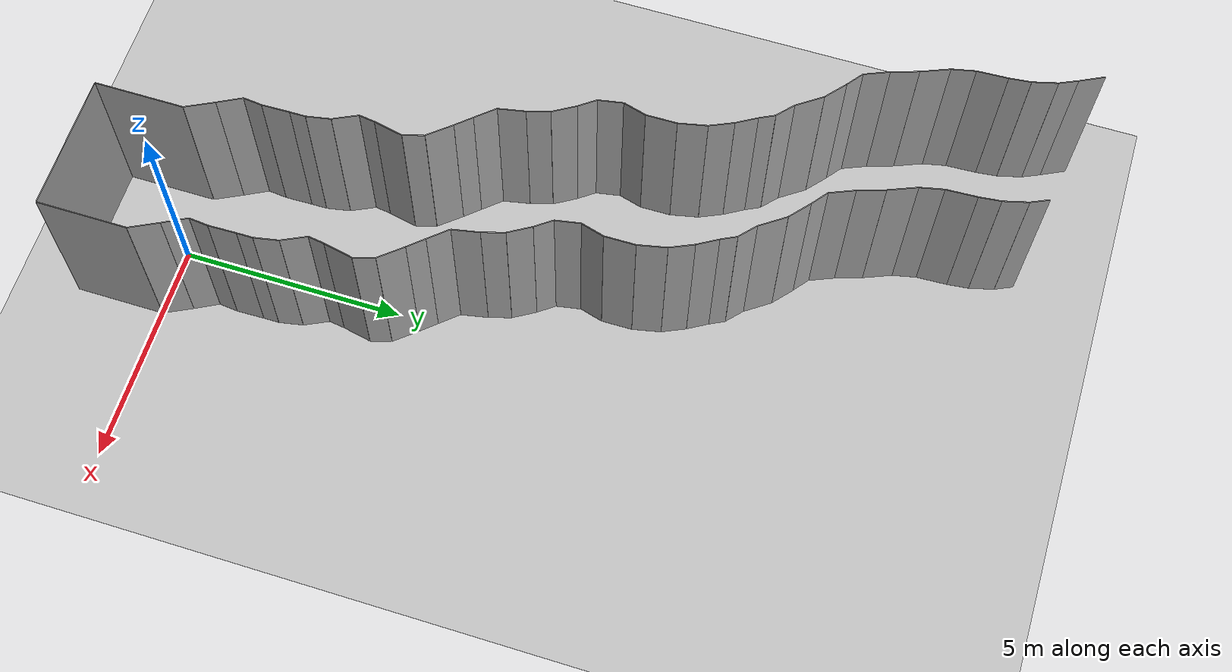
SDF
<sdf version="1.6">
 <world name="default">
  <model name="ground_plane">
   <static>1</static>
   <link name="link">
    <collision name="collision">
     <geometry><plane><normal>0 0 1</normal><size>200 200</size></plane></geometry>
     <surface><friction><ode><mu>100</mu><mu2>50</mu2></ode></friction></surface>
    </collision>
    <visual name="visual">
     <cast_shadows>0</cast_shadows>
     <geometry><plane><normal>0 0 1</normal><size>200 200</size></plane></geometry>
     <material>
      <script><uri>file://media/materials/scripts/gazebo.material</uri><name>Gazebo/Grey</name></script>
     </material>
    </visual>
   </link>
   <pose>0 100 0 0 -0 0</pose>
  </model>
  <model name="wall_back">
   <static>1</static>
   <pose>0.0 -2 2 0.0 0 0.0</pose>
   <link name="link">
    <collision name="collision"><geometry><box><size>3 0.02 4</size></box></geometry></collision>
    <visual name="visual">
     <material>
      <script><name>Gazebo/Grey</name><uri>file://media/materials/scripts/gazebo.material</uri></script>
     </material>
     <geometry><box><size>3 0.02 4</size></box></geometry>
    </visual>
   </link>
  </model>
  <model name="wall_left">
   <static>1</static>
   <pose>1.5 -1 2 0 0 0.00</pose>
   <link name="link">
    <collision name="collision"><geometry><box><size>0.02 2 4</size></box></geometry></collision>
    <visual name="visual">
     <material>
      <script><name>Gazebo/Grey</name><uri>file://media/materials/scripts/gazebo.material</uri></script>
     </material>
     <geometry><box><size>0.02 2 4</size></box></geometry>
    </visual>
   </link>
  </model>
  <model name="wall_right">
   <static>1</static>
   <pose>-1.5 -1 2 0 0 0.00</pose>
   <link name="link">
    <collision name="collision"><geometry><box><size>0.02 2 4</size></box></geometry></collision>
    <visual name="visual">
     <material>
      <script><name>Gazebo/Grey</name><uri>file://media/materials/scripts/gazebo.material</uri></script>
     </material>
     <geometry><box><size>0.02 2 4</size></box></geometry>
    </visual>
   </link>
  </model>
  <model name="wall_0">
   <static>1</static>
   <pose>-1.6543823810586844 0.30656647983834645 2 0 0 0.46651175535888567</pose>
   <link name="link">
    <collision name="collision"><geometry><box><size>0.02 0.686489406012 4</size></box></geometry></collision>
    <visual name="visual">
     <material>
      <script><name>Gazebo/Grey</name><uri>file://media/materials/scripts/gazebo.material</uri></script>
     </material>
     <geometry><box><size>0.02 0.686489406012 4</size></box></geometry>
    </visual>
   </link>
  </model>
  <model name="wall_1">
   <static>1</static>
   <pose>1.3456176189413156 0.30656647983834645 2 0 0 0.46651175535888567</pose>
   <link name="link">
    <collision name="collision"><geometry><box><size>0.02 0.686489406012 4</size></box></geometry></collision>
    <visual name="visual">
     <material>
      <script><name>Gazebo/Grey</name><uri>file://media/materials/scripts/gazebo.material</uri></script>
     </material>
     <geometry><box><size>0.02 0.686489406012 4</size></box></geometry>
    </visual>
   </link>
  </model>
  <model name="wall_2">
   <static>1</static>
   <pose>-1.9452144958780733 0.8722627589688359 2 0 0 0.48467623624901895</pose>
   <link name="link">
    <collision name="collision"><geometry><box><size>0.02 0.585719327749 4</size></box></geometry></collision>
    <visual name="visual">
     <material>
      <script><name>Gazebo/Grey</name><uri>file://media/materials/scripts/gazebo.material</uri></script>
     </material>
     <geometry><box><size>0.02 0.585719327749 4</size></box></geometry>
    </visual>
   </link>
  </model>
  <model name="wall_3">
   <static>1</static>
   <pose>1.0547855041219267 0.8722627589688359 2 0 0 0.48467623624901895</pose>
   <link name="link">
    <collision name="collision"><geometry><box><size>0.02 0.585719327749 4</size></box></geometry></collision>
    <visual name="visual">
     <material>
      <script><name>Gazebo/Grey</name><uri>file://media/materials/scripts/gazebo.material</uri></script>
     </material>
     <geometry><box><size>0.02 0.585719327749 4</size></box></geometry>
    </visual>
   </link>
  </model>
  <model name="wall_4">
   <static>1</static>
   <pose>-2.059857094756395 1.3435047060668295 2 0 0 -0.10244951304842882</pose>
   <link name="link">
    <collision name="collision"><geometry><box><size>0.02 0.426460382116 4</size></box></geometry></collision>
    <visual name="visual">
     <material>
      <script><name>Gazebo/Grey</name><uri>file://media/materials/scripts/gazebo.material</uri></script>
     </material>
     <geometry><box><size>0.02 0.426460382116 4</size></box></geometry>
    </visual>
   </link>
  </model>
  <model name="wall_5">
   <static>1</static>
   <pose>0.9401429052436052 1.3435047060668295 2 0 0 -0.10244951304842882</pose>
   <link name="link">
    <collision name="collision"><geometry><box><size>0.02 0.426460382116 4</size></box></geometry></collision>
    <visual name="visual">
     <material>
      <script><name>Gazebo/Grey</name><uri>file://media/materials/scripts/gazebo.material</uri></script>
     </material>
     <geometry><box><size>0.02 0.426460382116 4</size></box></geometry>
    </visual>
   </link>
  </model>
  <model name="wall_6">
   <static>1</static>
   <pose>-2.0437863155778673 1.8674679967461443 2 0 0 0.01839245737626638</pose>
   <link name="link">
    <collision name="collision"><geometry><box><size>0.02 0.623807794399 4</size></box></geometry></collision>
    <visual name="visual">
     <material>
      <script><name>Gazebo/Grey</name><uri>file://media/materials/scripts/gazebo.material</uri></script>
     </material>
     <geometry><box><size>0.02 0.623807794399 4</size></box></geometry>
    </visual>
   </link>
  </model>
  <model name="wall_7">
   <static>1</static>
   <pose>0.9562136844221327 1.8674679967461443 2 0 0 0.01839245737626638</pose>
   <link name="link">
    <collision name="collision"><geometry><box><size>0.02 0.623807794399 4</size></box></geometry></collision>
    <visual name="visual">
     <material>
      <script><name>Gazebo/Grey</name><uri>file://media/materials/scripts/gazebo.material</uri></script>
     </material>
     <geometry><box><size>0.02 0.623807794399 4</size></box></geometry>
    </visual>
   </link>
  </model>
  <model name="wall_8">
   <static>1</static>
   <pose>-2.050072337990936 2.3553519176681665 2 0 0 0.0031225146184185324</pose>
   <link name="link">
    <collision name="collision"><geometry><box><size>0.02 0.352067272441 4</size></box></geometry></collision>
    <visual name="visual">
     <material>
      <script><name>Gazebo/Grey</name><uri>file://media/materials/scripts/gazebo.material</uri></script>
     </material>
     <geometry><box><size>0.02 0.352067272441 4</size></box></geometry>
    </visual>
   </link>
  </model>
  <model name="wall_9">
   <static>1</static>
   <pose>0.9499276620090642 2.3553519176681665 2 0 0 0.0031225146184185324</pose>
   <link name="link">
    <collision name="collision"><geometry><box><size>0.02 0.352067272441 4</size></box></geometry></collision>
    <visual name="visual">
     <material>
      <script><name>Gazebo/Grey</name><uri>file://media/materials/scripts/gazebo.material</uri></script>
     </material>
     <geometry><box><size>0.02 0.352067272441 4</size></box></geometry>
    </visual>
   </link>
  </model>
  <model name="wall_10">
   <static>1</static>
   <pose>-2.1010790889533584 2.7994131217400637 2 0 0 0.1860750211381766</pose>
   <link name="link">
    <collision name="collision"><geometry><box><size>0.02 0.545472838949 4</size></box></geometry></collision>
    <visual name="visual">
     <material>
      <script><name>Gazebo/Grey</name><uri>file://media/materials/scripts/gazebo.material</uri></script>
     </material>
     <geometry><box><size>0.02 0.545472838949 4</size></box></geometry>
    </visual>
   </link>
  </model>
  <model name="wall_11">
   <static>1</static>
   <pose>0.8989209110466416 2.7994131217400637 2 0 0 0.1860750211381766</pose>
   <link name="link">
    <collision name="collision"><geometry><box><size>0.02 0.545472838949 4</size></box></geometry></collision>
    <visual name="visual">
     <material>
      <script><name>Gazebo/Grey</name><uri>file://media/materials/scripts/gazebo.material</uri></script>
     </material>
     <geometry><box><size>0.02 0.545472838949 4</size></box></geometry>
    </visual>
   </link>
  </model>
  <model name="wall_12">
   <static>1</static>
   <pose>-2.279869380166036 3.3324791798309112 2 0 0 0.4509339707663869</pose>
   <link name="link">
    <collision name="collision"><geometry><box><size>0.02 0.588946036307 4</size></box></geometry></collision>
    <visual name="visual">
     <material>
      <script><name>Gazebo/Grey</name><uri>file://media/materials/scripts/gazebo.material</uri></script>
     </material>
     <geometry><box><size>0.02 0.588946036307 4</size></box></geometry>
    </visual>
   </link>
  </model>
  <model name="wall_13">
   <static>1</static>
   <pose>0.7201306198339639 3.3324791798309112 2 0 0 0.4509339707663869</pose>
   <link name="link">
    <collision name="collision"><geometry><box><size>0.02 0.588946036307 4</size></box></geometry></collision>
    <visual name="visual">
     <material>
      <script><name>Gazebo/Grey</name><uri>file://media/materials/scripts/gazebo.material</uri></script>
     </material>
     <geometry><box><size>0.02 0.588946036307 4</size></box></geometry>
    </visual>
   </link>
  </model>
  <model name="wall_14">
   <static>1</static>
   <pose>-2.383348714980828 3.7754929051992154 2 0 0 -0.1387499565541778</pose>
   <link name="link">
    <collision name="collision"><geometry><box><size>0.02 0.359406203325 4</size></box></geometry></collision>
    <visual name="visual">
     <material>
      <script><name>Gazebo/Grey</name><uri>file://media/materials/scripts/gazebo.material</uri></script>
     </material>
     <geometry><box><size>0.02 0.359406203325 4</size></box></geometry>
    </visual>
   </link>
  </model>
  <model name="wall_15">
   <static>1</static>
   <pose>0.6166512850191719 3.7754929051992154 2 0 0 -0.1387499565541778</pose>
   <link name="link">
    <collision name="collision"><geometry><box><size>0.02 0.359406203325 4</size></box></geometry></collision>
    <visual name="visual">
     <material>
      <script><name>Gazebo/Grey</name><uri>file://media/materials/scripts/gazebo.material</uri></script>
     </material>
     <geometry><box><size>0.02 0.359406203325 4</size></box></geometry>
    </visual>
   </link>
  </model>
  <model name="wall_16">
   <static>1</static>
   <pose>-2.290016331919445 4.279901721092762 2 0 0 -0.20677987608019407</pose>
   <link name="link">
    <collision name="collision"><geometry><box><size>0.02 0.66707609412 4</size></box></geometry></collision>
    <visual name="visual">
     <material>
      <script><name>Gazebo/Grey</name><uri>file://media/materials/scripts/gazebo.material</uri></script>
     </material>
     <geometry><box><size>0.02 0.66707609412 4</size></box></geometry>
    </visual>
   </link>
  </model>
  <model name="wall_17">
   <static>1</static>
   <pose>0.7099836680805551 4.279901721092762 2 0 0 -0.20677987608019407</pose>
   <link name="link">
    <collision name="collision"><geometry><box><size>0.02 0.66707609412 4</size></box></geometry></collision>
    <visual name="visual">
     <material>
      <script><name>Gazebo/Grey</name><uri>file://media/materials/scripts/gazebo.material</uri></script>
     </material>
     <geometry><box><size>0.02 0.66707609412 4</size></box></geometry>
    </visual>
   </link>
  </model>
  <model name="wall_18">
   <static>1</static>
   <pose>-2.2898368334641326 4.836894867763636 2 0 0 0.2879948910821208</pose>
   <link name="link">
    <collision name="collision"><geometry><box><size>0.02 0.480927704564 4</size></box></geometry></collision>
    <visual name="visual">
     <material>
      <script><name>Gazebo/Grey</name><uri>file://media/materials/scripts/gazebo.material</uri></script>
     </material>
     <geometry><box><size>0.02 0.480927704564 4</size></box></geometry>
    </visual>
   </link>
  </model>
  <model name="wall_19">
   <static>1</static>
   <pose>0.7101631665358674 4.836894867763636 2 0 0 0.2879948910821208</pose>
   <link name="link">
    <collision name="collision"><geometry><box><size>0.02 0.480927704564 4</size></box></geometry></collision>
    <visual name="visual">
     <material>
      <script><name>Gazebo/Grey</name><uri>file://media/materials/scripts/gazebo.material</uri></script>
     </material>
     <geometry><box><size>0.02 0.480927704564 4</size></box></geometry>
    </visual>
   </link>
  </model>
  <model name="wall_20">
   <static>1</static>
   <pose>-2.564620765072096 5.312654884640017 2 0 0 0.6998953788413514</pose>
   <link name="link">
    <collision name="collision"><geometry><box><size>0.02 0.641120463387 4</size></box></geometry></collision>
    <visual name="visual">
     <material>
      <script><name>Gazebo/Grey</name><uri>file://media/materials/scripts/gazebo.material</uri></script>
     </material>
     <geometry><box><size>0.02 0.641120463387 4</size></box></geometry>
    </visual>
   </link>
  </model>
  <model name="wall_21">
   <static>1</static>
   <pose>0.435379234927904 5.312654884640017 2 0 0 0.6998953788413514</pose>
   <link name="link">
    <collision name="collision"><geometry><box><size>0.02 0.641120463387 4</size></box></geometry></collision>
    <visual name="visual">
     <material>
      <script><name>Gazebo/Grey</name><uri>file://media/materials/scripts/gazebo.material</uri></script>
     </material>
     <geometry><box><size>0.02 0.641120463387 4</size></box></geometry>
    </visual>
   </link>
  </model>
  <model name="wall_22">
   <static>1</static>
   <pose>-2.919191703955924 5.72342609266741 2 0 0 0.7297084128582174</pose>
   <link name="link">
    <collision name="collision"><geometry><box><size>0.02 0.444267617596 4</size></box></geometry></collision>
    <visual name="visual">
     <material>
      <script><name>Gazebo/Grey</name><uri>file://media/materials/scripts/gazebo.material</uri></script>
     </material>
     <geometry><box><size>0.02 0.444267617596 4</size></box></geometry>
    </visual>
   </link>
  </model>
  <model name="wall_23">
   <static>1</static>
   <pose>0.08080829604407613 5.72342609266741 2 0 0 0.7297084128582174</pose>
   <link name="link">
    <collision name="collision"><geometry><box><size>0.02 0.444267617596 4</size></box></geometry></collision>
    <visual name="visual">
     <material>
      <script><name>Gazebo/Grey</name><uri>file://media/materials/scripts/gazebo.material</uri></script>
     </material>
     <geometry><box><size>0.02 0.444267617596 4</size></box></geometry>
    </visual>
   </link>
  </model>
  <model name="wall_24">
   <static>1</static>
   <pose>-3.2457934064803684 6.09286042455447 2 0 0 0.7192071707024089</pose>
   <link name="link">
    <collision name="collision"><geometry><box><size>0.02 0.541951496886 4</size></box></geometry></collision>
    <visual name="visual">
     <material>
      <script><name>Gazebo/Grey</name><uri>file://media/materials/scripts/gazebo.material</uri></script>
     </material>
     <geometry><box><size>0.02 0.541951496886 4</size></box></geometry>
    </visual>
   </link>
  </model>
  <model name="wall_25">
   <static>1</static>
   <pose>-0.2457934064803684 6.09286042455447 2 0 0 0.7192071707024089</pose>
   <link name="link">
    <collision name="collision"><geometry><box><size>0.02 0.541951496886 4</size></box></geometry></collision>
    <visual name="visual">
     <material>
      <script><name>Gazebo/Grey</name><uri>file://media/materials/scripts/gazebo.material</uri></script>
     </material>
     <geometry><box><size>0.02 0.541951496886 4</size></box></geometry>
    </visual>
   </link>
  </model>
  <model name="wall_26">
   <static>1</static>
   <pose>-3.482805525628354 6.596380888041652 2 0 0 0.19278637269477422</pose>
   <link name="link">
    <collision name="collision"><geometry><box><size>0.02 0.610627868023 4</size></box></geometry></collision>
    <visual name="visual">
     <material>
      <script><name>Gazebo/Grey</name><uri>file://media/materials/scripts/gazebo.material</uri></script>
     </material>
     <geometry><box><size>0.02 0.610627868023 4</size></box></geometry>
    </visual>
   </link>
  </model>
  <model name="wall_27">
   <static>1</static>
   <pose>-0.4828055256283541 6.596380888041652 2 0 0 0.19278637269477422</pose>
   <link name="link">
    <collision name="collision"><geometry><box><size>0.02 0.610627868023 4</size></box></geometry></collision>
    <visual name="visual">
     <material>
      <script><name>Gazebo/Grey</name><uri>file://media/materials/scripts/gazebo.material</uri></script>
     </material>
     <geometry><box><size>0.02 0.610627868023 4</size></box></geometry>
    </visual>
   </link>
  </model>
  <model name="wall_28">
   <static>1</static>
   <pose>-3.6148097615556565 7.144617172428788 2 0 0 0.28751875089007684</pose>
   <link name="link">
    <collision name="collision"><geometry><box><size>0.02 0.518438756003 4</size></box></geometry></collision>
    <visual name="visual">
     <material>
      <script><name>Gazebo/Grey</name><uri>file://media/materials/scripts/gazebo.material</uri></script>
     </material>
     <geometry><box><size>0.02 0.518438756003 4</size></box></geometry>
    </visual>
   </link>
  </model>
  <model name="wall_29">
   <static>1</static>
   <pose>-0.6148097615556565 7.144617172428788 2 0 0 0.28751875089007684</pose>
   <link name="link">
    <collision name="collision"><geometry><box><size>0.02 0.518438756003 4</size></box></geometry></collision>
    <visual name="visual">
     <material>
      <script><name>Gazebo/Grey</name><uri>file://media/materials/scripts/gazebo.material</uri></script>
     </material>
     <geometry><box><size>0.02 0.518438756003 4</size></box></geometry>
    </visual>
   </link>
  </model>
  <model name="wall_30">
   <static>1</static>
   <pose>-3.8345046086885612 7.635181016317983 2 0 0 0.5434400285841595</pose>
   <link name="link">
    <collision name="collision"><geometry><box><size>0.02 0.565429186924 4</size></box></geometry></collision>
    <visual name="visual">
     <material>
      <script><name>Gazebo/Grey</name><uri>file://media/materials/scripts/gazebo.material</uri></script>
     </material>
     <geometry><box><size>0.02 0.565429186924 4</size></box></geometry>
    </visual>
   </link>
  </model>
  <model name="wall_31">
   <static>1</static>
   <pose>-0.8345046086885612 7.635181016317983 2 0 0 0.5434400285841595</pose>
   <link name="link">
    <collision name="collision"><geometry><box><size>0.02 0.565429186924 4</size></box></geometry></collision>
    <visual name="visual">
     <material>
      <script><name>Gazebo/Grey</name><uri>file://media/materials/scripts/gazebo.material</uri></script>
     </material>
     <geometry><box><size>0.02 0.565429186924 4</size></box></geometry>
    </visual>
   </link>
  </model>
  <model name="wall_32">
   <static>1</static>
   <pose>-4.115288077113676 8.057760478986667 2 0 0 0.6404848788463845</pose>
   <link name="link">
    <collision name="collision"><geometry><box><size>0.02 0.450468404269 4</size></box></geometry></collision>
    <visual name="visual">
     <material>
      <script><name>Gazebo/Grey</name><uri>file://media/materials/scripts/gazebo.material</uri></script>
     </material>
     <geometry><box><size>0.02 0.450468404269 4</size></box></geometry>
    </visual>
   </link>
  </model>
  <model name="wall_33">
   <static>1</static>
   <pose>-1.115288077113676 8.057760478986667 2 0 0 0.6404848788463845</pose>
   <link name="link">
    <collision name="collision"><geometry><box><size>0.02 0.450468404269 4</size></box></geometry></collision>
    <visual name="visual">
     <material>
      <script><name>Gazebo/Grey</name><uri>file://media/materials/scripts/gazebo.material</uri></script>
     </material>
     <geometry><box><size>0.02 0.450468404269 4</size></box></geometry>
    </visual>
   </link>
  </model>
  <model name="wall_34">
   <static>1</static>
   <pose>-4.299435172877977 8.51320136878723 2 0 0 0.17836873913840587</pose>
   <link name="link">
    <collision name="collision"><geometry><box><size>0.02 0.558555265946 4</size></box></geometry></collision>
    <visual name="visual">
     <material>
      <script><name>Gazebo/Grey</name><uri>file://media/materials/scripts/gazebo.material</uri></script>
     </material>
     <geometry><box><size>0.02 0.558555265946 4</size></box></geometry>
    </visual>
   </link>
  </model>
  <model name="wall_35">
   <static>1</static>
   <pose>-1.2994351728779767 8.51320136878723 2 0 0 0.17836873913840587</pose>
   <link name="link">
    <collision name="collision"><geometry><box><size>0.02 0.558555265946 4</size></box></geometry></collision>
    <visual name="visual">
     <material>
      <script><name>Gazebo/Grey</name><uri>file://media/materials/scripts/gazebo.material</uri></script>
     </material>
     <geometry><box><size>0.02 0.558555265946 4</size></box></geometry>
    </visual>
   </link>
  </model>
  <model name="wall_36">
   <static>1</static>
   <pose>-4.2760185301588285 9.04758153323963 2 0 0 -0.27407297041161416</pose>
   <link name="link">
    <collision name="collision"><geometry><box><size>0.02 0.539191362106 4</size></box></geometry></collision>
    <visual name="visual">
     <material>
      <script><name>Gazebo/Grey</name><uri>file://media/materials/scripts/gazebo.material</uri></script>
     </material>
     <geometry><box><size>0.02 0.539191362106 4</size></box></geometry>
    </visual>
   </link>
  </model>
  <model name="wall_37">
   <static>1</static>
   <pose>-1.2760185301588285 9.04758153323963 2 0 0 -0.27407297041161416</pose>
   <link name="link">
    <collision name="collision"><geometry><box><size>0.02 0.539191362106 4</size></box></geometry></collision>
    <visual name="visual">
     <material>
      <script><name>Gazebo/Grey</name><uri>file://media/materials/scripts/gazebo.material</uri></script>
     </material>
     <geometry><box><size>0.02 0.539191362106 4</size></box></geometry>
    </visual>
   </link>
  </model>
  <model name="wall_38">
   <static>1</static>
   <pose>-4.20504366651556 9.652917953593123 2 0 0 0.005761754508568655</pose>
   <link name="link">
    <collision name="collision"><geometry><box><size>0.02 0.691617458791 4</size></box></geometry></collision>
    <visual name="visual">
     <material>
      <script><name>Gazebo/Grey</name><uri>file://media/materials/scripts/gazebo.material</uri></script>
     </material>
     <geometry><box><size>0.02 0.691617458791 4</size></box></geometry>
    </visual>
   </link>
  </model>
  <model name="wall_39">
   <static>1</static>
   <pose>-1.20504366651556 9.652917953593123 2 0 0 0.005761754508568655</pose>
   <link name="link">
    <collision name="collision"><geometry><box><size>0.02 0.691617458791 4</size></box></geometry></collision>
    <visual name="visual">
     <material>
      <script><name>Gazebo/Grey</name><uri>file://media/materials/scripts/gazebo.material</uri></script>
     </material>
     <geometry><box><size>0.02 0.691617458791 4</size></box></geometry>
    </visual>
   </link>
  </model>
  <model name="wall_40">
   <static>1</static>
   <pose>-4.274500966864753 10.314746966604584 2 0 0 0.21032168698291834</pose>
   <link name="link">
    <collision name="collision"><geometry><box><size>0.02 0.646293905643 4</size></box></geometry></collision>
    <visual name="visual">
     <material>
      <script><name>Gazebo/Grey</name><uri>file://media/materials/scripts/gazebo.material</uri></script>
     </material>
     <geometry><box><size>0.02 0.646293905643 4</size></box></geometry>
    </visual>
   </link>
  </model>
  <model name="wall_41">
   <static>1</static>
   <pose>-1.2745009668647533 10.314746966604584 2 0 0 0.21032168698291834</pose>
   <link name="link">
    <collision name="collision"><geometry><box><size>0.02 0.646293905643 4</size></box></geometry></collision>
    <visual name="visual">
     <material>
      <script><name>Gazebo/Grey</name><uri>file://media/materials/scripts/gazebo.material</uri></script>
     </material>
     <geometry><box><size>0.02 0.646293905643 4</size></box></geometry>
    </visual>
   </link>
  </model>
  <model name="wall_42">
   <static>1</static>
   <pose>-4.457773014037533 10.886065462250867 2 0 0 0.42586488387103183</pose>
   <link name="link">
    <collision name="collision"><geometry><box><size>0.02 0.560662301275 4</size></box></geometry></collision>
    <visual name="visual">
     <material>
      <script><name>Gazebo/Grey</name><uri>file://media/materials/scripts/gazebo.material</uri></script>
     </material>
     <geometry><box><size>0.02 0.560662301275 4</size></box></geometry>
    </visual>
   </link>
  </model>
  <model name="wall_43">
   <static>1</static>
   <pose>-1.4577730140375333 10.886065462250867 2 0 0 0.42586488387103183</pose>
   <link name="link">
    <collision name="collision"><geometry><box><size>0.02 0.560662301275 4</size></box></geometry></collision>
    <visual name="visual">
     <material>
      <script><name>Gazebo/Grey</name><uri>file://media/materials/scripts/gazebo.material</uri></script>
     </material>
     <geometry><box><size>0.02 0.560662301275 4</size></box></geometry>
    </visual>
   </link>
  </model>
  <model name="wall_44">
   <static>1</static>
   <pose>-4.703960582407086 11.35962647889364 2 0 0 0.5384607656495747</pose>
   <link name="link">
    <collision name="collision"><geometry><box><size>0.02 0.508488732725 4</size></box></geometry></collision>
    <visual name="visual">
     <material>
      <script><name>Gazebo/Grey</name><uri>file://media/materials/scripts/gazebo.material</uri></script>
     </material>
     <geometry><box><size>0.02 0.508488732725 4</size></box></geometry>
    </visual>
   </link>
  </model>
  <model name="wall_45">
   <static>1</static>
   <pose>-1.7039605824070856 11.35962647889364 2 0 0 0.5384607656495747</pose>
   <link name="link">
    <collision name="collision"><geometry><box><size>0.02 0.508488732725 4</size></box></geometry></collision>
    <visual name="visual">
     <material>
      <script><name>Gazebo/Grey</name><uri>file://media/materials/scripts/gazebo.material</uri></script>
     </material>
     <geometry><box><size>0.02 0.508488732725 4</size></box></geometry>
    </visual>
   </link>
  </model>
  <model name="wall_46">
   <static>1</static>
   <pose>-4.918099443545411 11.743242715882806 2 0 0 0.46888166544557536</pose>
   <link name="link">
    <collision name="collision"><geometry><box><size>0.02 0.370703895905 4</size></box></geometry></collision>
    <visual name="visual">
     <material>
      <script><name>Gazebo/Grey</name><uri>file://media/materials/scripts/gazebo.material</uri></script>
     </material>
     <geometry><box><size>0.02 0.370703895905 4</size></box></geometry>
    </visual>
   </link>
  </model>
  <model name="wall_47">
   <static>1</static>
   <pose>-1.9180994435454108 11.743242715882806 2 0 0 0.46888166544557536</pose>
   <link name="link">
    <collision name="collision"><geometry><box><size>0.02 0.370703895905 4</size></box></geometry></collision>
    <visual name="visual">
     <material>
      <script><name>Gazebo/Grey</name><uri>file://media/materials/scripts/gazebo.material</uri></script>
     </material>
     <geometry><box><size>0.02 0.370703895905 4</size></box></geometry>
    </visual>
   </link>
  </model>
  <model name="wall_48">
   <static>1</static>
   <pose>-5.179390324439873 12.066083320564976 2 0 0 0.8451417917808436</pose>
   <link name="link">
    <collision name="collision"><geometry><box><size>0.02 0.47464414453 4</size></box></geometry></collision>
    <visual name="visual">
     <material>
      <script><name>Gazebo/Grey</name><uri>file://media/materials/scripts/gazebo.material</uri></script>
     </material>
     <geometry><box><size>0.02 0.47464414453 4</size></box></geometry>
    </visual>
   </link>
  </model>
  <model name="wall_49">
   <static>1</static>
   <pose>-2.179390324439873 12.066083320564976 2 0 0 0.8451417917808436</pose>
   <link name="link">
    <collision name="collision"><geometry><box><size>0.02 0.47464414453 4</size></box></geometry></collision>
    <visual name="visual">
     <material>
      <script><name>Gazebo/Grey</name><uri>file://media/materials/scripts/gazebo.material</uri></script>
     </material>
     <geometry><box><size>0.02 0.47464414453 4</size></box></geometry>
    </visual>
   </link>
  </model>
  <model name="wall_50">
   <static>1</static>
   <pose>-5.551896465735448 12.496326528862921 2 0 0 0.6206186792407631</pose>
   <link name="link">
    <collision name="collision"><geometry><box><size>0.02 0.670544521075 4</size></box></geometry></collision>
    <visual name="visual">
     <material>
      <script><name>Gazebo/Grey</name><uri>file://media/materials/scripts/gazebo.material</uri></script>
     </material>
     <geometry><box><size>0.02 0.670544521075 4</size></box></geometry>
    </visual>
   </link>
  </model>
  <model name="wall_51">
   <static>1</static>
   <pose>-2.5518964657354477 12.496326528862921 2 0 0 0.6206186792407631</pose>
   <link name="link">
    <collision name="collision"><geometry><box><size>0.02 0.670544521075 4</size></box></geometry></collision>
    <visual name="visual">
     <material>
      <script><name>Gazebo/Grey</name><uri>file://media/materials/scripts/gazebo.material</uri></script>
     </material>
     <geometry><box><size>0.02 0.670544521075 4</size></box></geometry>
    </visual>
   </link>
  </model>
  <model name="wall_52">
   <static>1</static>
   <pose>-5.964303892062197 12.953702459686623 2 0 0 0.8668177658218559</pose>
   <link name="link">
    <collision name="collision"><geometry><box><size>0.02 0.570487605197 4</size></box></geometry></collision>
    <visual name="visual">
     <material>
      <script><name>Gazebo/Grey</name><uri>file://media/materials/scripts/gazebo.material</uri></script>
     </material>
     <geometry><box><size>0.02 0.570487605197 4</size></box></geometry>
    </visual>
   </link>
  </model>
  <model name="wall_53">
   <static>1</static>
   <pose>-2.9643038920621967 12.953702459686623 2 0 0 0.8668177658218559</pose>
   <link name="link">
    <collision name="collision"><geometry><box><size>0.02 0.570487605197 4</size></box></geometry></collision>
    <visual name="visual">
     <material>
      <script><name>Gazebo/Grey</name><uri>file://media/materials/scripts/gazebo.material</uri></script>
     </material>
     <geometry><box><size>0.02 0.570487605197 4</size></box></geometry>
    </visual>
   </link>
  </model>
  <model name="wall_54">
   <static>1</static>
   <pose>-6.357036600522708 13.272945342648471 2 0 0 0.9159189311959149</pose>
   <link name="link">
    <collision name="collision"><geometry><box><size>0.02 0.442047760074 4</size></box></geometry></collision>
    <visual name="visual">
     <material>
      <script><name>Gazebo/Grey</name><uri>file://media/materials/scripts/gazebo.material</uri></script>
     </material>
     <geometry><box><size>0.02 0.442047760074 4</size></box></geometry>
    </visual>
   </link>
  </model>
  <model name="wall_55">
   <static>1</static>
   <pose>-3.357036600522708 13.272945342648471 2 0 0 0.9159189311959149</pose>
   <link name="link">
    <collision name="collision"><geometry><box><size>0.02 0.442047760074 4</size></box></geometry></collision>
    <visual name="visual">
     <material>
      <script><name>Gazebo/Grey</name><uri>file://media/materials/scripts/gazebo.material</uri></script>
     </material>
     <geometry><box><size>0.02 0.442047760074 4</size></box></geometry>
    </visual>
   </link>
  </model>
  <model name="wall_56">
   <static>1</static>
   <pose>-6.646114318915432 13.67549192420865 2 0 0 0.4015820331990404</pose>
   <link name="link">
    <collision name="collision"><geometry><box><size>0.02 0.582174256631 4</size></box></geometry></collision>
    <visual name="visual">
     <material>
      <script><name>Gazebo/Grey</name><uri>file://media/materials/scripts/gazebo.material</uri></script>
     </material>
     <geometry><box><size>0.02 0.582174256631 4</size></box></geometry>
    </visual>
   </link>
  </model>
  <model name="wall_57">
   <static>1</static>
   <pose>-3.6461143189154317 13.67549192420865 2 0 0 0.4015820331990404</pose>
   <link name="link">
    <collision name="collision"><geometry><box><size>0.02 0.582174256631 4</size></box></geometry></collision>
    <visual name="visual">
     <material>
      <script><name>Gazebo/Grey</name><uri>file://media/materials/scripts/gazebo.material</uri></script>
     </material>
     <geometry><box><size>0.02 0.582174256631 4</size></box></geometry>
    </visual>
   </link>
  </model>
  <model name="wall_58">
   <static>1</static>
   <pose>-6.857996356947405 14.241056013758298 2 0 0 0.3183957100025487</pose>
   <link name="link">
    <collision name="collision"><geometry><box><size>0.02 0.626771781245 4</size></box></geometry></collision>
    <visual name="visual">
     <material>
      <script><name>Gazebo/Grey</name><uri>file://media/materials/scripts/gazebo.material</uri></script>
     </material>
     <geometry><box><size>0.02 0.626771781245 4</size></box></geometry>
    </visual>
   </link>
  </model>
  <model name="wall_59">
   <static>1</static>
   <pose>-3.857996356947405 14.241056013758298 2 0 0 0.3183957100025487</pose>
   <link name="link">
    <collision name="collision"><geometry><box><size>0.02 0.626771781245 4</size></box></geometry></collision>
    <visual name="visual">
     <material>
      <script><name>Gazebo/Grey</name><uri>file://media/materials/scripts/gazebo.material</uri></script>
     </material>
     <geometry><box><size>0.02 0.626771781245 4</size></box></geometry>
    </visual>
   </link>
  </model>
  <model name="wall_60">
   <static>1</static>
   <pose>-7.0833512909204295 14.845704658360427 2 0 0 0.39292776241886906</pose>
   <link name="link">
    <collision name="collision"><geometry><box><size>0.02 0.664681854426 4</size></box></geometry></collision>
    <visual name="visual">
     <material>
      <script><name>Gazebo/Grey</name><uri>file://media/materials/scripts/gazebo.material</uri></script>
     </material>
     <geometry><box><size>0.02 0.664681854426 4</size></box></geometry>
    </visual>
   </link>
  </model>
  <model name="wall_61">
   <static>1</static>
   <pose>-4.0833512909204295 14.845704658360427 2 0 0 0.39292776241886906</pose>
   <link name="link">
    <collision name="collision"><geometry><box><size>0.02 0.664681854426 4</size></box></geometry></collision>
    <visual name="visual">
     <material>
      <script><name>Gazebo/Grey</name><uri>file://media/materials/scripts/gazebo.material</uri></script>
     </material>
     <geometry><box><size>0.02 0.664681854426 4</size></box></geometry>
    </visual>
   </link>
  </model>
  <model name="wall_62">
   <static>1</static>
   <pose>-7.268294154239975 15.416405111375003 2 0 0 0.2153933452892111</pose>
   <link name="link">
    <collision name="collision"><geometry><box><size>0.02 0.539847714358 4</size></box></geometry></collision>
    <visual name="visual">
     <material>
      <script><name>Gazebo/Grey</name><uri>file://media/materials/scripts/gazebo.material</uri></script>
     </material>
     <geometry><box><size>0.02 0.539847714358 4</size></box></geometry>
    </visual>
   </link>
  </model>
  <model name="wall_63">
   <static>1</static>
   <pose>-4.268294154239975 15.416405111375003 2 0 0 0.2153933452892111</pose>
   <link name="link">
    <collision name="collision"><geometry><box><size>0.02 0.539847714358 4</size></box></geometry></collision>
    <visual name="visual">
     <material>
      <script><name>Gazebo/Grey</name><uri>file://media/materials/scripts/gazebo.material</uri></script>
     </material>
     <geometry><box><size>0.02 0.539847714358 4</size></box></geometry>
    </visual>
   </link>
  </model>
  <model name="wall_64">
   <static>1</static>
   <pose>-7.339893843065096 16.02458330863012 2 0 0 0.04035179007164962</pose>
   <link name="link">
    <collision name="collision"><geometry><box><size>0.02 0.68954457066 4</size></box></geometry></collision>
    <visual name="visual">
     <material>
      <script><name>Gazebo/Grey</name><uri>file://media/materials/scripts/gazebo.material</uri></script>
     </material>
     <geometry><box><size>0.02 0.68954457066 4</size></box></geometry>
    </visual>
   </link>
  </model>
  <model name="wall_65">
   <static>1</static>
   <pose>-4.339893843065096 16.02458330863012 2 0 0 0.04035179007164962</pose>
   <link name="link">
    <collision name="collision"><geometry><box><size>0.02 0.68954457066 4</size></box></geometry></collision>
    <visual name="visual">
     <material>
      <script><name>Gazebo/Grey</name><uri>file://media/materials/scripts/gazebo.material</uri></script>
     </material>
     <geometry><box><size>0.02 0.68954457066 4</size></box></geometry>
    </visual>
   </link>
  </model>
  <model name="wall_66">
   <static>1</static>
   <pose>-7.379220181064299 16.60984750586899 2 0 0 0.10517866128709</pose>
   <link name="link">
    <collision name="collision"><geometry><box><size>0.02 0.484221020573 4</size></box></geometry></collision>
    <visual name="visual">
     <material>
      <script><name>Gazebo/Grey</name><uri>file://media/materials/scripts/gazebo.material</uri></script>
     </material>
     <geometry><box><size>0.02 0.484221020573 4</size></box></geometry>
    </visual>
   </link>
  </model>
  <model name="wall_67">
   <static>1</static>
   <pose>-4.379220181064299 16.60984750586899 2 0 0 0.10517866128709</pose>
   <link name="link">
    <collision name="collision"><geometry><box><size>0.02 0.484221020573 4</size></box></geometry></collision>
    <visual name="visual">
     <material>
      <script><name>Gazebo/Grey</name><uri>file://media/materials/scripts/gazebo.material</uri></script>
     </material>
     <geometry><box><size>0.02 0.484221020573 4</size></box></geometry>
    </visual>
   </link>
  </model>
  <model name="wall_68">
   <static>1</static>
   <pose>-7.476948264503303 17.125807262545347 2 0 0 0.25695822527983436</pose>
   <link name="link">
    <collision name="collision"><geometry><box><size>0.02 0.569057987974 4</size></box></geometry></collision>
    <visual name="visual">
     <material>
      <script><name>Gazebo/Grey</name><uri>file://media/materials/scripts/gazebo.material</uri></script>
     </material>
     <geometry><box><size>0.02 0.569057987974 4</size></box></geometry>
    </visual>
   </link>
  </model>
  <model name="wall_69">
   <static>1</static>
   <pose>-4.476948264503303 17.125807262545347 2 0 0 0.25695822527983436</pose>
   <link name="link">
    <collision name="collision"><geometry><box><size>0.02 0.569057987974 4</size></box></geometry></collision>
    <visual name="visual">
     <material>
      <script><name>Gazebo/Grey</name><uri>file://media/materials/scripts/gazebo.material</uri></script>
     </material>
     <geometry><box><size>0.02 0.569057987974 4</size></box></geometry>
    </visual>
   </link>
  </model>
  <model name="wall_70">
   <static>1</static>
   <pose>-7.6383461126709165 17.594561762734372 2 0 0 0.43133800648701814</pose>
   <link name="link">
    <collision name="collision"><geometry><box><size>0.02 0.426168609065 4</size></box></geometry></collision>
    <visual name="visual">
     <material>
      <script><name>Gazebo/Grey</name><uri>file://media/materials/scripts/gazebo.material</uri></script>
     </material>
     <geometry><box><size>0.02 0.426168609065 4</size></box></geometry>
    </visual>
   </link>
  </model>
  <model name="wall_71">
   <static>1</static>
   <pose>-4.6383461126709165 17.594561762734372 2 0 0 0.43133800648701814</pose>
   <link name="link">
    <collision name="collision"><geometry><box><size>0.02 0.426168609065 4</size></box></geometry></collision>
    <visual name="visual">
     <material>
      <script><name>Gazebo/Grey</name><uri>file://media/materials/scripts/gazebo.material</uri></script>
     </material>
     <geometry><box><size>0.02 0.426168609065 4</size></box></geometry>
    </visual>
   </link>
  </model>
  <model name="wall_72">
   <static>1</static>
   <pose>-7.859079595083798 18.051267998944404 2 0 0 0.46387960950541135</pose>
   <link name="link">
    <collision name="collision"><geometry><box><size>0.02 0.588464808912 4</size></box></geometry></collision>
    <visual name="visual">
     <material>
      <script><name>Gazebo/Grey</name><uri>file://media/materials/scripts/gazebo.material</uri></script>
     </material>
     <geometry><box><size>0.02 0.588464808912 4</size></box></geometry>
    </visual>
   </link>
  </model>
 </world>
</sdf>
